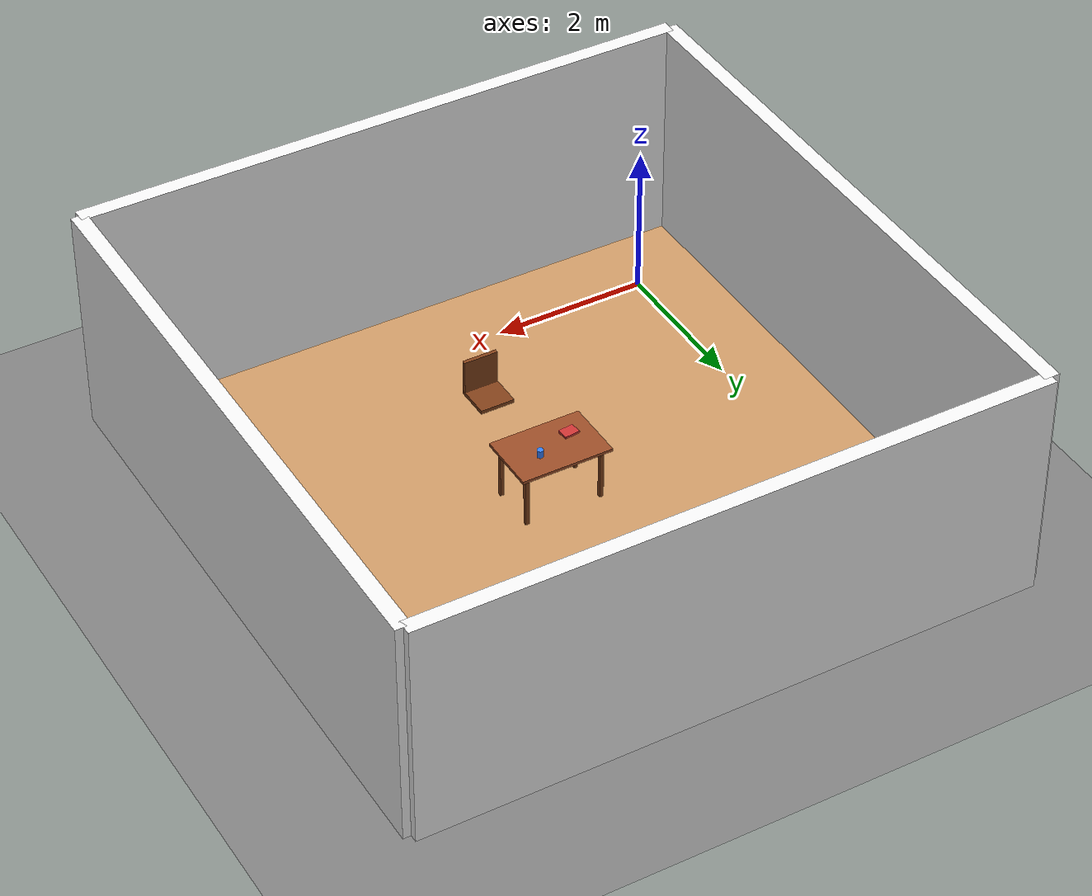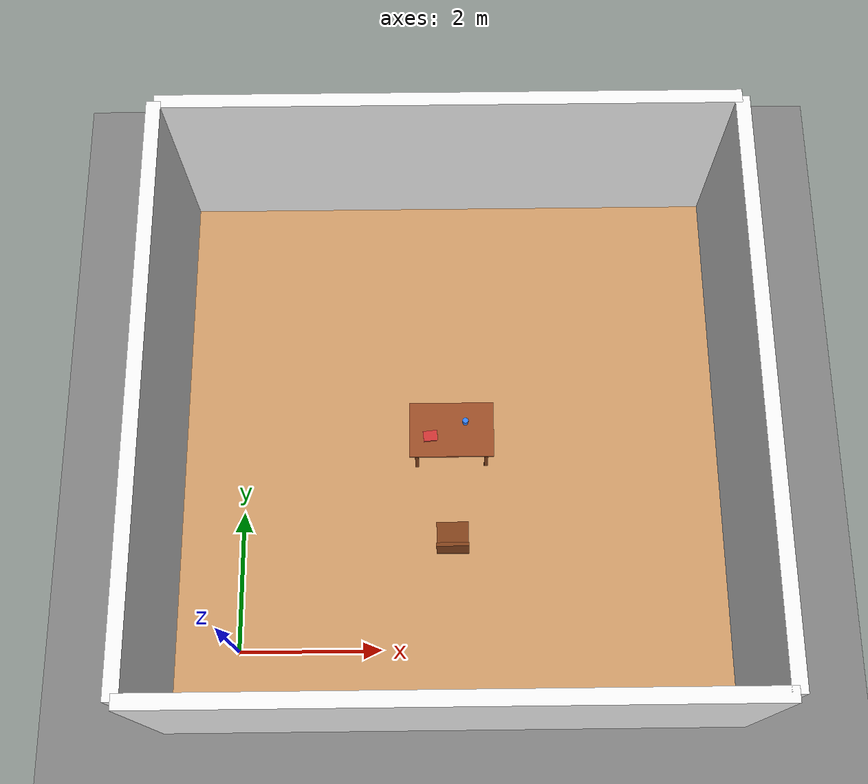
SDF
<?xml version="1.0"?>

<sdf version="1.9">
  <world name="humanoid_home">

    <!-- Physics Configuration -->
    <physics name="1ms" type="ignored">
      <max_step_size>0.001</max_step_size>
      <real_time_factor>1.0</real_time_factor>
    </physics>

    <!-- Plugins -->
    <plugin filename="gz-sim-physics-system"
            name="gz::sim::systems::Physics">
    </plugin>
    <plugin filename="gz-sim-user-commands-system"
            name="gz::sim::systems::UserCommands">
    </plugin>
    <plugin filename="gz-sim-scene-broadcaster-system"
            name="gz::sim::systems::SceneBroadcaster">
    </plugin>
    <plugin filename="gz-sim-sensors-system"
            name="gz::sim::systems::Sensors">
      <render_engine>ogre2</render_engine>
    </plugin>
    <plugin filename="gz-sim-imu-system"
            name="gz::sim::systems::Imu">
    </plugin>

    <!-- Lighting -->
    <light type="directional" name="sun">
      <cast_shadows>true</cast_shadows>
      <pose>0 0 10 0 0 0</pose>
      <diffuse>1 1 1 1</diffuse>
      <specular>0.5 0.5 0.5 1</specular>
      <attenuation>
        <range>1000</range>
        <constant>0.9</constant>
        <linear>0.01</linear>
        <quadratic>0.001</quadratic>
      </attenuation>
      <direction>-0.5 0.1 -0.9</direction>
    </light>

    <light type="point" name="ceiling_light_1">
      <pose>2 2 2.8 0 0 0</pose>
      <diffuse>0.8 0.8 0.8 1</diffuse>
      <specular>0.2 0.2 0.2 1</specular>
      <attenuation>
        <range>10</range>
        <constant>0.5</constant>
        <linear>0.01</linear>
        <quadratic>0.001</quadratic>
      </attenuation>
    </light>

    <!-- Ground Plane -->
    <model name="ground_plane">
      <static>true</static>
      <link name="link">
        <collision name="collision">
          <geometry>
            <plane>
              <normal>0 0 1</normal>
              <size>20 20</size>
            </plane>
          </geometry>
          <surface>
            <friction>
              <ode>
                <mu>100</mu>
                <mu2>50</mu2>
              </ode>
            </friction>
          </surface>
        </collision>
        <visual name="visual">
          <geometry>
            <plane>
              <normal>0 0 1</normal>
              <size>20 20</size>
            </plane>
          </geometry>
          <material>
            <ambient>0.3 0.3 0.3 1</ambient>
            <diffuse>0.5 0.5 0.5 1</diffuse>
            <specular>0.1 0.1 0.1 1</specular>
          </material>
        </visual>
      </link>
    </model>

    <!-- Indoor Floor (Wooden) -->
    <model name="floor">
      <static>true</static>
      <pose>3 3 0.01 0 0 0</pose>
      <link name="link">
        <visual name="visual">
          <geometry>
            <box>
              <size>8 8 0.02</size>
            </box>
          </geometry>
          <material>
            <ambient>0.6 0.4 0.2 1</ambient>
            <diffuse>0.8 0.6 0.4 1</diffuse>
            <specular>0.2 0.2 0.2 1</specular>
          </material>
        </visual>
      </link>
    </model>

    <!-- Walls -->
    <!-- North Wall -->
    <model name="wall_north">
      <static>true</static>
      <pose>3 7 1.5 0 0 0</pose>
      <link name="link">
        <collision name="collision">
          <geometry>
            <box>
              <size>8 0.2 3</size>
            </box>
          </geometry>
        </collision>
        <visual name="visual">
          <geometry>
            <box>
              <size>8 0.2 3</size>
            </box>
          </geometry>
          <material>
            <ambient>0.9 0.9 0.9 1</ambient>
            <diffuse>0.95 0.95 0.95 1</diffuse>
          </material>
        </visual>
      </link>
    </model>

    <!-- South Wall -->
    <model name="wall_south">
      <static>true</static>
      <pose>3 -1 1.5 0 0 0</pose>
      <link name="link">
        <collision name="collision">
          <geometry>
            <box>
              <size>8 0.2 3</size>
            </box>
          </geometry>
        </collision>
        <visual name="visual">
          <geometry>
            <box>
              <size>8 0.2 3</size>
            </box>
          </geometry>
          <material>
            <ambient>0.9 0.9 0.9 1</ambient>
            <diffuse>0.95 0.95 0.95 1</diffuse>
          </material>
        </visual>
      </link>
    </model>

    <!-- East Wall -->
    <model name="wall_east">
      <static>true</static>
      <pose>7 3 1.5 0 0 0</pose>
      <link name="link">
        <collision name="collision">
          <geometry>
            <box>
              <size>0.2 8 3</size>
            </box>
          </geometry>
        </collision>
        <visual name="visual">
          <geometry>
            <box>
              <size>0.2 8 3</size>
            </box>
          </geometry>
          <material>
            <ambient>0.9 0.9 0.9 1</ambient>
            <diffuse>0.95 0.95 0.95 1</diffuse>
          </material>
        </visual>
      </link>
    </model>

    <!-- West Wall -->
    <model name="wall_west">
      <static>true</static>
      <pose>-1 3 1.5 0 0 0</pose>
      <link name="link">
        <collision name="collision">
          <geometry>
            <box>
              <size>0.2 8 3</size>
            </box>
          </geometry>
        </collision>
        <visual name="visual">
          <geometry>
            <box>
              <size>0.2 8 3</size>
            </box>
          </geometry>
          <material>
            <ambient>0.9 0.9 0.9 1</ambient>
            <diffuse>0.95 0.95 0.95 1</diffuse>
          </material>
        </visual>
      </link>
    </model>

    <!-- Table -->
    <model name="table">
      <static>true</static>
      <pose>3 3 0 0 0 0</pose>
      <link name="tabletop">
        <pose>0 0 0.75 0 0 0</pose>
        <collision name="collision">
          <geometry>
            <box>
              <size>1.2 0.8 0.04</size>
            </box>
          </geometry>
        </collision>
        <visual name="visual">
          <geometry>
            <box>
              <size>1.2 0.8 0.04</size>
            </box>
          </geometry>
          <material>
            <ambient>0.4 0.2 0.1 1</ambient>
            <diffuse>0.6 0.3 0.15 1</diffuse>
          </material>
        </visual>
      </link>
      <!-- Table Legs -->
      <link name="leg1">
        <pose>0.5 0.3 0.375 0 0 0</pose>
        <collision name="collision">
          <geometry>
            <box>
              <size>0.05 0.05 0.73</size>
            </box>
          </geometry>
        </collision>
        <visual name="visual">
          <geometry>
            <box>
              <size>0.05 0.05 0.73</size>
            </box>
          </geometry>
          <material>
            <ambient>0.3 0.15 0.05 1</ambient>
            <diffuse>0.5 0.25 0.1 1</diffuse>
          </material>
        </visual>
      </link>
      <link name="leg2">
        <pose>0.5 -0.3 0.375 0 0 0</pose>
        <collision name="collision">
          <geometry>
            <box>
              <size>0.05 0.05 0.73</size>
            </box>
          </geometry>
        </collision>
        <visual name="visual">
          <geometry>
            <box>
              <size>0.05 0.05 0.73</size>
            </box>
          </geometry>
          <material>
            <ambient>0.3 0.15 0.05 1</ambient>
            <diffuse>0.5 0.25 0.1 1</diffuse>
          </material>
        </visual>
      </link>
      <link name="leg3">
        <pose>-0.5 0.3 0.375 0 0 0</pose>
        <collision name="collision">
          <geometry>
            <box>
              <size>0.05 0.05 0.73</size>
            </box>
          </geometry>
        </collision>
        <visual name="visual">
          <geometry>
            <box>
              <size>0.05 0.05 0.73</size>
            </box>
          </geometry>
          <material>
            <ambient>0.3 0.15 0.05 1</ambient>
            <diffuse>0.5 0.25 0.1 1</diffuse>
          </material>
        </visual>
      </link>
      <link name="leg4">
        <pose>-0.5 -0.3 0.375 0 0 0</pose>
        <collision name="collision">
          <geometry>
            <box>
              <size>0.05 0.05 0.73</size>
            </box>
          </geometry>
        </collision>
        <visual name="visual">
          <geometry>
            <box>
              <size>0.05 0.05 0.73</size>
            </box>
          </geometry>
          <material>
            <ambient>0.3 0.15 0.05 1</ambient>
            <diffuse>0.5 0.25 0.1 1</diffuse>
          </material>
        </visual>
      </link>
    </model>

    <!-- Cup on Table (Manipulable Object) -->
    <model name="cup">
      <pose>3.2 3.1 0.82 0 0 0</pose>
      <link name="link">
        <inertial>
          <mass>0.1</mass>
          <inertia>
            <ixx>0.0001</ixx>
            <iyy>0.0001</iyy>
            <izz>0.0001</izz>
          </inertia>
        </inertial>
        <collision name="collision">
          <geometry>
            <cylinder>
              <radius>0.04</radius>
              <length>0.1</length>
            </cylinder>
          </geometry>
        </collision>
        <visual name="visual">
          <geometry>
            <cylinder>
              <radius>0.04</radius>
              <length>0.1</length>
            </cylinder>
          </geometry>
          <material>
            <ambient>0.1 0.3 0.8 1</ambient>
            <diffuse>0.2 0.5 1 1</diffuse>
          </material>
        </visual>
      </link>
    </model>

    <!-- Book on Table -->
    <model name="book">
      <pose>2.7 2.9 0.79 0 0 0.1</pose>
      <link name="link">
        <inertial>
          <mass>0.3</mass>
          <inertia>
            <ixx>0.001</ixx>
            <iyy>0.001</iyy>
            <izz>0.001</izz>
          </inertia>
        </inertial>
        <collision name="collision">
          <geometry>
            <box>
              <size>0.2 0.15 0.03</size>
            </box>
          </geometry>
        </collision>
        <visual name="visual">
          <geometry>
            <box>
              <size>0.2 0.15 0.03</size>
            </box>
          </geometry>
          <material>
            <ambient>0.6 0.1 0.1 1</ambient>
            <diffuse>0.8 0.2 0.2 1</diffuse>
          </material>
        </visual>
      </link>
    </model>

    <!-- Chair -->
    <model name="chair">
      <static>true</static>
      <pose>3 1.5 0 0 0 0</pose>
      <link name="seat">
        <pose>0 0 0.45 0 0 0</pose>
        <collision name="collision">
          <geometry>
            <box>
              <size>0.45 0.45 0.05</size>
            </box>
          </geometry>
        </collision>
        <visual name="visual">
          <geometry>
            <box>
              <size>0.45 0.45 0.05</size>
            </box>
          </geometry>
          <material>
            <ambient>0.3 0.15 0.05 1</ambient>
            <diffuse>0.5 0.25 0.1 1</diffuse>
          </material>
        </visual>
      </link>
      <link name="backrest">
        <pose>0 -0.2 0.7 0 0 0</pose>
        <collision name="collision">
          <geometry>
            <box>
              <size>0.45 0.05 0.45</size>
            </box>
          </geometry>
        </collision>
        <visual name="visual">
          <geometry>
            <box>
              <size>0.45 0.05 0.45</size>
            </box>
          </geometry>
          <material>
            <ambient>0.3 0.15 0.05 1</ambient>
            <diffuse>0.5 0.25 0.1 1</diffuse>
          </material>
        </visual>
      </link>
    </model>

  </world>
</sdf>
